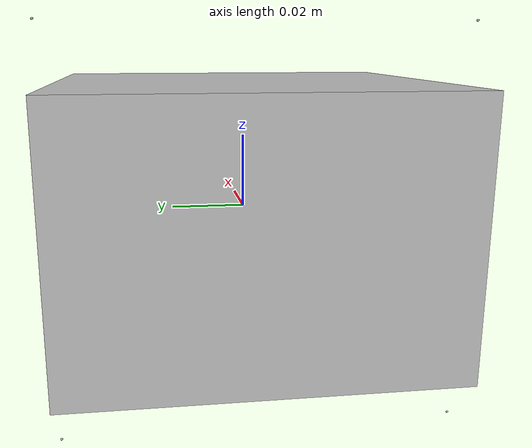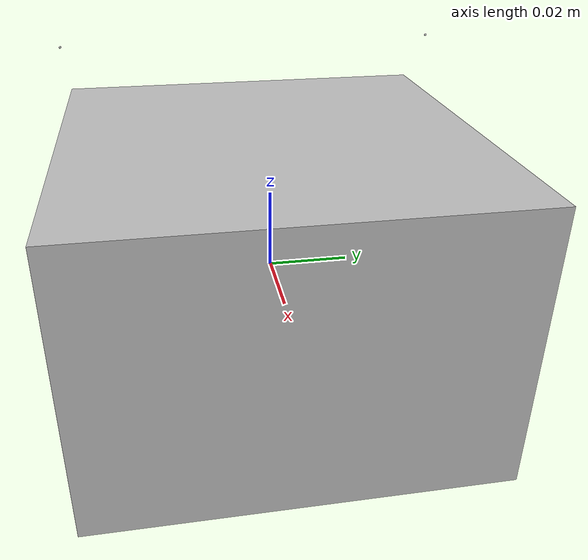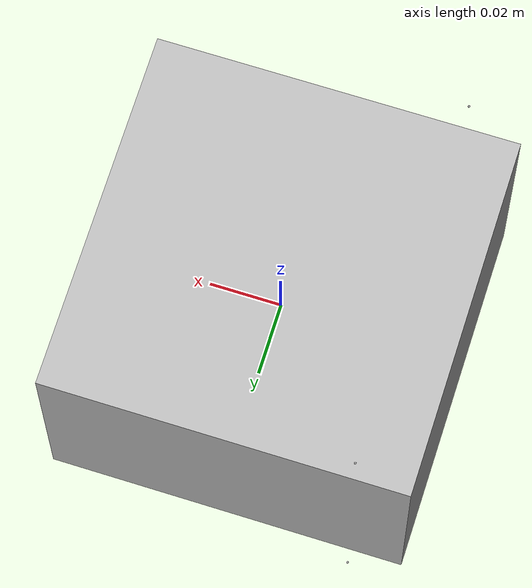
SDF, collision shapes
<?xml version="1.0"?>
<!-- Minimal generated SDF -->
<sdf version="1.6">
  <model name="brick_with_texture_1dof">
    <link name="brick_base_link">
    </link>
    <link name='brick_link'>
    <inertial>
      <pose>0 0 0 0 0 0</pose>
      <mass>0.028</mass>
      <inertia>
        <ixx>1.17e-5</ixx>
        <ixy>0</ixy>
        <ixz>0</ixz>
        <iyy>1.9e-5</iyy>
        <iyz>0</iyz>
        <izz>1.9e-5</izz>
      </inertia>
    </inertial>

      <visual name='brick_with_texture'>
        <pose>0 0 0 0 1.57 0</pose>
          <geometry>
            <mesh>
              <uri>./meshes/simple_brick.obj</uri>
              <scale>1.0 1.0 1.0</scale>
            </mesh>
          </geometry>
          <material>
            <drake:diffuse_map>./textures/simple_brick_color.png</drake:diffuse_map>
            <drake:roughness_map>./textures/simple_brick_roughness.png</drake:roughness_map>
            <drake:metalness_map>./textures/simple_brick_metalness.png</drake:metalness_map>
          </material>
      </visual>

      <collision name="box_collision">
        <pose>0.0 0.0 0.0 0.0 0.0 0.0</pose>
        <geometry>
          <box>
            <size>0.1 0.1 0.07</size>
          </box>
        </geometry>
      </collision>
    <collision name='sphere1_collision'>
      <pose>-0.035 0.05 0.05 0 0 0</pose>
      <geometry>
        <sphere>
<!--          TODO(rcory) I'm sure this affects that master sim too-->
          <radius>.0003</radius>
        </sphere>
      </geometry>
    </collision>
    <collision name='sphere2_collision'>
      <pose>-0.035 -0.05 0.05 0 0 0</pose>
      <geometry>
        <sphere>
          <radius>.0003</radius>
        </sphere>
      </geometry>
    </collision>
    <collision name='sphere3_collision'>
      <pose>-0.035 0.05 -0.05 0 0 0</pose>
      <geometry>
        <sphere>
          <radius>.0003</radius>
        </sphere>
      </geometry>
    </collision>
    <collision name='sphere4_collision'>
      <pose>-0.035 -0.05 -0.05 0 0 0</pose>
      <geometry>
        <sphere>
          <radius>.0003</radius>
        </sphere>
      </geometry>
    </collision>
    </link>
   <joint name="brick_revolute_x_joint" type="revolute">
     <parent>brick_base_link</parent>
     <child>brick_link</child>
     <axis>
       <xyz> 1 0 0 </xyz>
       <limit>
         <!-- Drake parses a zero effort joint as an un-actuated joint. -->
         <effort> 0 </effort>
       </limit>
       <dynamics>
         <damping>.0008</damping>
       </dynamics>
       <use_parent_model_frame>1</use_parent_model_frame>
     </axis>
   </joint>
  </model>
</sdf>
